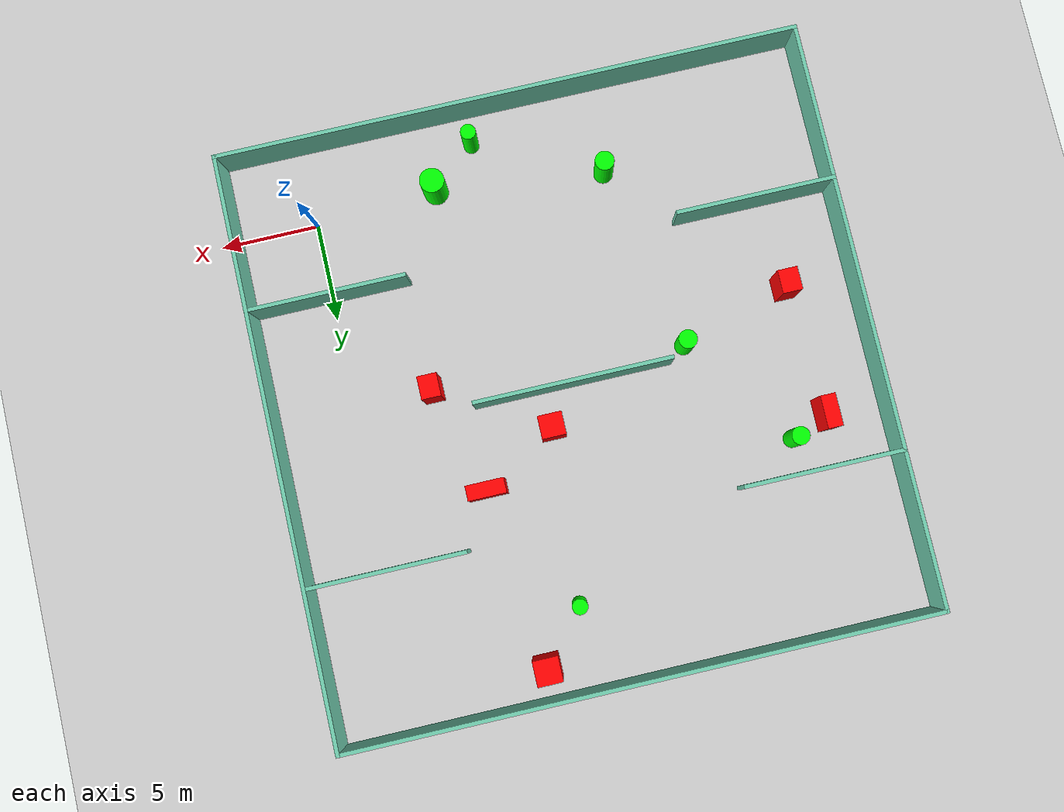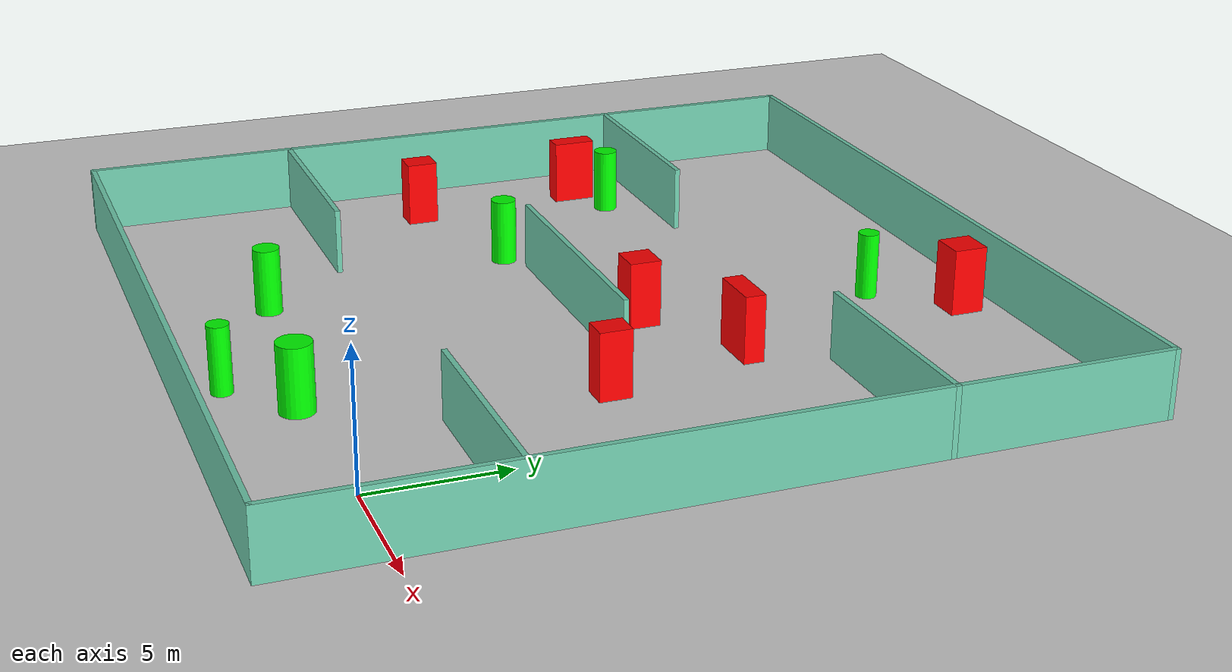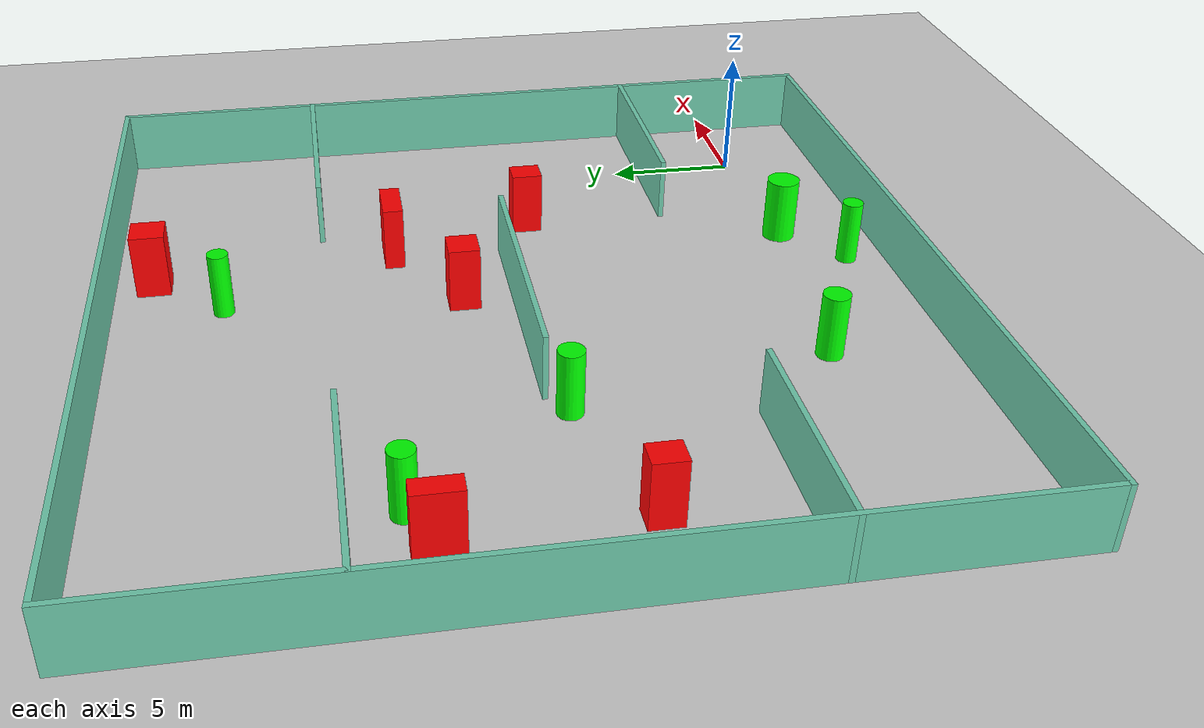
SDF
<sdf version="1.7">
 <world name="default">
  <light name="sun" type="directional">
   <pose>0 0 10 0 -0 0</pose>
   <diffuse>0.8 0.8 0.8 1</diffuse>
   <specular>0.2 0.2 0.2 1</specular>
   <attenuation>
    <range>1000</range>
    <constant>0.9</constant>
    <linear>0.01</linear>
    <quadratic>0.001</quadratic>
   </attenuation>
   <direction>-0.5 0.1 -0.9</direction>
   <spot><inner_angle>0</inner_angle><outer_angle>0</outer_angle><falloff>0</falloff></spot>
  </light>
  <model name="ground_plane">
   <static>1</static>
   <link name="link">
    <collision name="collision">
     <geometry><plane><normal>0 0 1</normal><size>100 100</size></plane></geometry>
     <surface>
      <contact><collide_bitmask>65535</collide_bitmask></contact>
      <friction><ode><mu>100</mu><mu2>50</mu2></ode></friction>
     </surface>
    </collision>
    <visual name="visual">
     <cast_shadows>0</cast_shadows>
     <geometry><plane><normal>0 0 1</normal><size>100 100</size></plane></geometry>
     <material>
      <script><uri>file://media/materials/scripts/gazebo.material</uri><name>Gazebo/Grey</name></script>
     </material>
    </visual>
   </link>
  </model>
  <gravity>0 0 -9.8</gravity>
  <magnetic_field>6e-06 2.3e-05 -4.2e-05</magnetic_field>
  <atmosphere type="adiabatic"/>
  <physics type="ode">
   <max_step_size>0.001</max_step_size>
   <real_time_factor>1</real_time_factor>
   <real_time_update_rate>1000</real_time_update_rate>
  </physics>
  <scene><ambient>0.4 0.4 0.4 1</ambient><background>0.7 0.7 0.7 1</background><shadows>1</shadows></scene>
  <spherical_coordinates>
   <surface_model>EARTH_WGS84</surface_model>
   <latitude_deg>0</latitude_deg>
   <longitude_deg>0</longitude_deg>
   <elevation>0</elevation>
   <heading_deg>0</heading_deg>
  </spherical_coordinates>
  <model name="my_base_walls">
   <link name="Wall_10">
    <collision name="Wall_10_Collision">
     <geometry><box><size>8.2 0.2 2.5</size></box></geometry>
     <pose>0 0 1.25 0 -0 0</pose>
    </collision>
    <visual name="Wall_10_Visual">
     <pose>0 0 1.25 0 -0 0</pose>
     <geometry><box><size>8.2 0.2 2.5</size></box></geometry>
     <material>
      <script><uri>file://media/materials/scripts/gazebo.material</uri><name>Gazebo/Grey</name></script>
      <ambient>0.435294 0.796078 0.67451 1</ambient>
     </material>
     <meta><layer>0</layer></meta>
    </visual>
    <pose>-11 -7 0 0 -0 0</pose>
   </link>
   <link name="Wall_12">
    <collision name="Wall_12_Collision">
     <geometry><box><size>8.2 0.2 2.5</size></box></geometry>
     <pose>0 0 1.25 0 -0 0</pose>
    </collision>
    <visual name="Wall_12_Visual">
     <pose>0 0 1.25 0 -0 0</pose>
     <geometry><box><size>8.2 0.2 2.5</size></box></geometry>
     <material>
      <script><uri>file://media/materials/scripts/gazebo.material</uri><name>Gazebo/Grey</name></script>
      <ambient>0.435294 0.796078 0.67451 1</ambient>
     </material>
     <meta><layer>0</layer></meta>
    </visual>
    <pose>-11 7 0 0 -0 0</pose>
   </link>
   <link name="Wall_14">
    <collision name="Wall_14_Collision">
     <geometry><box><size>8.2 0.2 2.5</size></box></geometry>
     <pose>0 0 1.25 0 -0 0</pose>
    </collision>
    <visual name="Wall_14_Visual">
     <pose>0 0 1.25 0 -0 0</pose>
     <geometry><box><size>8.2 0.2 2.5</size></box></geometry>
     <material>
      <script><uri>file://media/materials/scripts/gazebo.material</uri><name>Gazebo/Grey</name></script>
      <ambient>0.435294 0.796078 0.67451 1</ambient>
     </material>
     <meta><layer>0</layer></meta>
    </visual>
    <pose>11 7 0 0 -0 3.14159</pose>
   </link>
   <link name="Wall_16">
    <collision name="Wall_16_Collision">
     <geometry><box><size>10.2 0.2 2.5</size></box></geometry>
     <pose>0 0 1.25 0 -0 0</pose>
    </collision>
    <visual name="Wall_16_Visual">
     <pose>0 0 1.25 0 -0 0</pose>
     <geometry><box><size>10.2 0.2 2.5</size></box></geometry>
     <material>
      <script><uri>file://media/materials/scripts/gazebo.material</uri><name>Gazebo/Grey</name></script>
      <ambient>0.435294 0.796078 0.67451 1</ambient>
     </material>
     <meta><layer>0</layer></meta>
    </visual>
    <pose>0 0 0 0 -0 3.14159</pose>
   </link>
   <link name="Wall_2">
    <collision name="Wall_2_Collision">
     <geometry><box><size>30.2 0.2 2.5</size></box></geometry>
     <pose>0 0 1.25 0 -0 0</pose>
    </collision>
    <visual name="Wall_2_Visual">
     <pose>0 0 1.25 0 -0 0</pose>
     <geometry><box><size>30.2 0.2 2.5</size></box></geometry>
     <material>
      <script><uri>file://media/materials/scripts/gazebo.material</uri><name>Gazebo/Grey</name></script>
      <ambient>0.435294 0.796078 0.67451 1</ambient>
     </material>
     <meta><layer>0</layer></meta>
    </visual>
    <pose>0 -15 0 0 -0 3.14159</pose>
   </link>
   <link name="Wall_3">
    <collision name="Wall_3_Collision">
     <geometry><box><size>30.2 0.2 2.5</size></box></geometry>
     <pose>0 0 1.25 0 -0 0</pose>
    </collision>
    <visual name="Wall_3_Visual">
     <pose>0 0 1.25 0 -0 0</pose>
     <geometry><box><size>30.2 0.2 2.5</size></box></geometry>
     <material>
      <script><uri>file://media/materials/scripts/gazebo.material</uri><name>Gazebo/Grey</name></script>
      <ambient>0.435294 0.796078 0.67451 1</ambient>
     </material>
     <meta><layer>0</layer></meta>
    </visual>
    <pose>-15 0 0 0 -0 1.5708</pose>
   </link>
   <link name="Wall_4">
    <collision name="Wall_4_Collision">
     <geometry><box><size>30.2 0.2 2.5</size></box></geometry>
     <pose>0 0 1.25 0 -0 0</pose>
    </collision>
    <visual name="Wall_4_Visual">
     <pose>0 0 1.25 0 -0 0</pose>
     <geometry><box><size>30.2 0.2 2.5</size></box></geometry>
     <material>
      <script><uri>file://media/materials/scripts/gazebo.material</uri><name>Gazebo/Grey</name></script>
      <ambient>0.435294 0.796078 0.67451 1</ambient>
     </material>
     <meta><layer>0</layer></meta>
    </visual>
    <pose>0 15 0 0 -0 0</pose>
   </link>
   <link name="Wall_6">
    <collision name="Wall_6_Collision">
     <geometry><box><size>30.2 0.2 2.5</size></box></geometry>
     <pose>0 0 1.25 0 -0 0</pose>
    </collision>
    <visual name="Wall_6_Visual">
     <pose>0 0 1.25 0 -0 0</pose>
     <geometry><box><size>30.2 0.2 2.5</size></box></geometry>
     <material>
      <script><uri>file://media/materials/scripts/gazebo.material</uri><name>Gazebo/Grey</name></script>
      <ambient>0.435294 0.796078 0.67451 1</ambient>
     </material>
     <meta><layer>0</layer></meta>
    </visual>
    <pose>15 0 0 0 -0 1.5708</pose>
   </link>
   <link name="Wall_8">
    <collision name="Wall_8_Collision">
     <geometry><box><size>8.2 0.2 2.5</size></box></geometry>
     <pose>0 0 1.25 0 -0 0</pose>
    </collision>
    <visual name="Wall_8_Visual">
     <pose>0 0 1.25 0 -0 0</pose>
     <geometry><box><size>8.2 0.2 2.5</size></box></geometry>
     <material>
      <script><uri>file://media/materials/scripts/gazebo.material</uri><name>Gazebo/Grey</name></script>
      <ambient>0.435294 0.796078 0.67451 1</ambient>
     </material>
     <meta><layer>0</layer></meta>
    </visual>
    <pose>11 -7 0 0 -0 3.14159</pose>
   </link>
   <static>1</static>
   <pose>-11 11 0 0 -0 0</pose>
  </model>
  <model name="cylinder1">
   <static>1</static>
   <link name="link">
    <inertial>
     <mass>1</mass>
     <inertia><ixx>0.5</ixx><ixy>0</ixy><ixz>0</ixz><iyy>0.5</iyy><iyz>0</iyz><izz>1</izz></inertia>
    </inertial>
    <collision name="collision">
     <geometry><cylinder><radius>0.45728875994507795</radius><length>2.5</length></cylinder></geometry>
    </collision>
    <visual name="visual">
     <geometry><cylinder><radius>0.45728875994507795</radius><length>2.5</length></cylinder></geometry>
     <material>
      <ambient>0 1 0 1</ambient>
      <diffuse>0 1 0 1</diffuse>
      <specular>0.1 0.1 0.1 1</specular>
      <emissive>0 0 0 0</emissive>
     </material>
    </visual>
   </link>
   <pose>-21.21540469351257 16.188555227977556 1.25 0 0 0</pose>
  </model>
  <model name="cylinder2">
   <static>1</static>
   <link name="link">
    <inertial>
     <mass>1</mass>
     <inertia><ixx>0.5</ixx><ixy>0</ixy><ixz>0</ixz><iyy>0.5</iyy><iyz>0</iyz><izz>1</izz></inertia>
    </inertial>
    <collision name="collision">
     <geometry><cylinder><radius>0.6283948651327044</radius><length>2.5</length></cylinder></geometry>
    </collision>
    <visual name="visual">
     <geometry><cylinder><radius>0.6283948651327044</radius><length>2.5</length></cylinder></geometry>
     <material>
      <ambient>0 1 0 1</ambient>
      <diffuse>0 1 0 1</diffuse>
      <specular>0.1 0.1 0.1 1</specular>
      <emissive>0 0 0 0</emissive>
     </material>
    </visual>
   </link>
   <pose>-6.372969656731353 -0.3583105842979939 1.25 0 0 0</pose>
  </model>
  <model name="cylinder3">
   <static>1</static>
   <link name="link">
    <inertial>
     <mass>1</mass>
     <inertia><ixx>0.5</ixx><ixy>0</ixy><ixz>0</ixz><iyy>0.5</iyy><iyz>0</iyz><izz>1</izz></inertia>
    </inertial>
    <collision name="collision">
     <geometry><cylinder><radius>0.4755117403228997</radius><length>2.5</length></cylinder></geometry>
    </collision>
    <visual name="visual">
     <geometry><cylinder><radius>0.4755117403228997</radius><length>2.5</length></cylinder></geometry>
     <material>
      <ambient>0 1 0 1</ambient>
      <diffuse>0 1 0 1</diffuse>
      <specular>0.1 0.1 0.1 1</specular>
      <emissive>0 0 0 0</emissive>
     </material>
    </visual>
   </link>
   <pose>-16.9639242529286 10.314010906178233 1.25 0 0 0</pose>
  </model>
  <model name="cylinder4">
   <static>1</static>
   <link name="link">
    <inertial>
     <mass>1</mass>
     <inertia><ixx>0.5</ixx><ixy>0</ixy><ixz>0</ixz><iyy>0.5</iyy><iyz>0</iyz><izz>1</izz></inertia>
    </inertial>
    <collision name="collision">
     <geometry><cylinder><radius>0.49392996528827726</radius><length>2.5</length></cylinder></geometry>
    </collision>
    <visual name="visual">
     <geometry><cylinder><radius>0.49392996528827726</radius><length>2.5</length></cylinder></geometry>
     <material>
      <ambient>0 1 0 1</ambient>
      <diffuse>0 1 0 1</diffuse>
      <specular>0.1 0.1 0.1 1</specular>
      <emissive>0 0 0 0</emissive>
     </material>
    </visual>
   </link>
   <pose>-15.021088523996998 0.6090339149906172 1.25 0 0 0</pose>
  </model>
  <model name="cylinder5">
   <static>1</static>
   <link name="link">
    <inertial>
     <mass>1</mass>
     <inertia><ixx>0.5</ixx><ixy>0</ixy><ixz>0</ixz><iyy>0.5</iyy><iyz>0</iyz><izz>1</izz></inertia>
    </inertial>
    <collision name="collision">
     <geometry><cylinder><radius>0.38867863084554355</radius><length>2.5</length></cylinder></geometry>
    </collision>
    <visual name="visual">
     <geometry><cylinder><radius>0.38867863084554355</radius><length>2.5</length></cylinder></geometry>
     <material>
      <ambient>0 1 0 1</ambient>
      <diffuse>0 1 0 1</diffuse>
      <specular>0.1 0.1 0.1 1</specular>
      <emissive>0 0 0 0</emissive>
     </material>
    </visual>
   </link>
   <pose>-8.82722180991992 21.797594477097014 1.25 0 0 0</pose>
  </model>
  <model name="cylinder6">
   <static>1</static>
   <link name="link">
    <inertial>
     <mass>1</mass>
     <inertia><ixx>0.5</ixx><ixy>0</ixy><ixz>0</ixz><iyy>0.5</iyy><iyz>0</iyz><izz>1</izz></inertia>
    </inertial>
    <collision name="collision">
     <geometry><cylinder><radius>0.39350702317818576</radius><length>2.5</length></cylinder></geometry>
    </collision>
    <visual name="visual">
     <geometry><cylinder><radius>0.39350702317818576</radius><length>2.5</length></cylinder></geometry>
     <material>
      <ambient>0 1 0 1</ambient>
      <diffuse>0 1 0 1</diffuse>
      <specular>0.1 0.1 0.1 1</specular>
      <emissive>0 0 0 0</emissive>
     </material>
    </visual>
   </link>
   <pose>-8.678530310708663 -2.3859672345272394 1.25 0 0 0</pose>
  </model>
  <model name="box1">
   <static>1</static>
   <link name="link">
    <inertial>
     <mass>1</mass>
     <inertia><ixx>0.083</ixx><ixy>0</ixy><ixz>0</ixz><iyy>0.083</iyy><iyz>0</iyz><izz>0.083</izz></inertia>
    </inertial>
    <collision name="collision">
     <geometry><box><size>1.2248865277142813 1.1668472213464296 2.5</size></box></geometry>
    </collision>
    <visual name="visual">
     <geometry><box><size>1.2248865277142813 1.1668472213464296 2.5</size></box></geometry>
     <material>
      <ambient>1 0 0 1</ambient>
      <diffuse>1 0 0 1</diffuse>
      <specular>0.1 0.1 0.1 1</specular>
      <emissive>0 0 0 0</emissive>
     </material>
    </visual>
    <sensor name="my_contact" type="contact">
     <contact><collision>box_collision</collision><topic>__default_topic__</topic></contact>
    </sensor>
   </link>
   <pose>-9.46721413830867 12.93719030795721 1.25 0 0 0</pose>
  </model>
  <model name="box2">
   <static>1</static>
   <link name="link">
    <inertial>
     <mass>1</mass>
     <inertia><ixx>0.083</ixx><ixy>0</ixy><ixz>0</ixz><iyy>0.083</iyy><iyz>0</iyz><izz>0.083</izz></inertia>
    </inertial>
    <collision name="collision">
     <geometry><box><size>1.9417968508352907 0.7670852462604052 2.5</size></box></geometry>
    </collision>
    <visual name="visual">
     <geometry><box><size>1.9417968508352907 0.7670852462604052 2.5</size></box></geometry>
     <material>
      <ambient>1 0 0 1</ambient>
      <diffuse>1 0 0 1</diffuse>
      <specular>0.1 0.1 0.1 1</specular>
      <emissive>0 0 0 0</emissive>
     </material>
    </visual>
    <sensor name="my_contact" type="contact">
     <contact><collision>box_collision</collision><topic>__default_topic__</topic></contact>
    </sensor>
   </link>
   <pose>-5.631294939881659 15.26261139494849 1.25 0 0 0</pose>
  </model>
  <model name="box3">
   <static>1</static>
   <link name="link">
    <inertial>
     <mass>1</mass>
     <inertia><ixx>0.083</ixx><ixy>0</ixy><ixz>0</ixz><iyy>0.083</iyy><iyz>0</iyz><izz>0.083</izz></inertia>
    </inertial>
    <collision name="collision">
     <geometry><box><size>0.7722630134889205 1.658576653123082 2.5</size></box></geometry>
    </collision>
    <visual name="visual">
     <geometry><box><size>0.7722630134889205 1.658576653123082 2.5</size></box></geometry>
     <material>
      <ambient>1 0 0 1</ambient>
      <diffuse>1 0 0 1</diffuse>
      <specular>0.1 0.1 0.1 1</specular>
      <emissive>0 0 0 0</emissive>
     </material>
    </visual>
    <sensor name="my_contact" type="contact">
     <contact><collision>box_collision</collision><topic>__default_topic__</topic></contact>
    </sensor>
   </link>
   <pose>-22.986484972931077 15.34076663411373 1.25 0 0 0</pose>
  </model>
  <model name="box4">
   <static>1</static>
   <link name="link">
    <inertial>
     <mass>1</mass>
     <inertia><ixx>0.083</ixx><ixy>0</ixy><ixz>0</ixz><iyy>0.083</iyy><iyz>0</iyz><izz>0.083</izz></inertia>
    </inertial>
    <collision name="collision">
     <geometry><box><size>1.0179323563453901 1.189238827219262 2.5</size></box></geometry>
    </collision>
    <visual name="visual">
     <geometry><box><size>1.0179323563453901 1.189238827219262 2.5</size></box></geometry>
     <material>
      <ambient>1 0 0 1</ambient>
      <diffuse>1 0 0 1</diffuse>
      <specular>0.1 0.1 0.1 1</specular>
      <emissive>0 0 0 0</emissive>
     </material>
    </visual>
    <sensor name="my_contact" type="contact">
     <contact><collision>box_collision</collision><topic>__default_topic__</topic></contact>
    </sensor>
   </link>
   <pose>-22.587275953766245 8.575691638608692 1.25 0 0 0</pose>
  </model>
  <model name="box5">
   <static>1</static>
   <link name="link">
    <inertial>
     <mass>1</mass>
     <inertia><ixx>0.083</ixx><ixy>0</ixy><ixz>0</ixz><iyy>0.083</iyy><iyz>0</iyz><izz>0.083</izz></inertia>
    </inertial>
    <collision name="collision">
     <geometry><box><size>0.991889168443393 1.1793881506352268 2.5</size></box></geometry>
    </collision>
    <visual name="visual">
     <geometry><box><size>0.991889168443393 1.1793881506352268 2.5</size></box></geometry>
     <material>
      <ambient>1 0 0 1</ambient>
      <diffuse>1 0 0 1</diffuse>
      <specular>0.1 0.1 0.1 1</specular>
      <emissive>0 0 0 0</emissive>
     </material>
    </visual>
    <sensor name="my_contact" type="contact">
     <contact><collision>box_collision</collision><topic>__default_topic__</topic></contact>
    </sensor>
   </link>
   <pose>-4.015197166609454 9.710392703099645 1.25 0 0 0</pose>
  </model>
  <model name="box6">
   <static>1</static>
   <link name="link">
    <inertial>
     <mass>1</mass>
     <inertia><ixx>0.083</ixx><ixy>0</ixy><ixz>0</ixz><iyy>0.083</iyy><iyz>0</iyz><izz>0.083</izz></inertia>
    </inertial>
    <collision name="collision">
     <geometry><box><size>1.2800762496522773 1.2744440602553597 2.5</size></box></geometry>
    </collision>
    <visual name="visual">
     <geometry><box><size>1.2800762496522773 1.2744440602553597 2.5</size></box></geometry>
     <material>
      <ambient>1 0 0 1</ambient>
      <diffuse>1 0 0 1</diffuse>
      <specular>0.1 0.1 0.1 1</specular>
      <emissive>0 0 0 0</emissive>
     </material>
    </visual>
    <sensor name="my_contact" type="contact">
     <contact><collision>box_collision</collision><topic>__default_topic__</topic></contact>
    </sensor>
   </link>
   <pose>-6.6188915508468735 24.435625014257518 1.25 0 0 0</pose>
  </model>
 </world>
</sdf>
